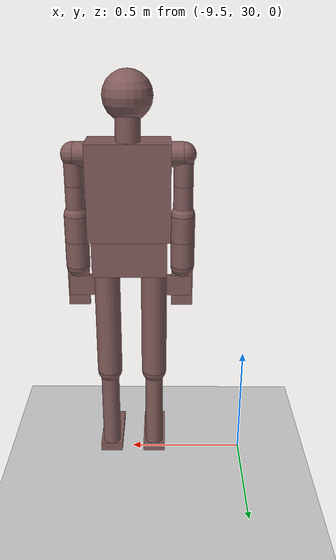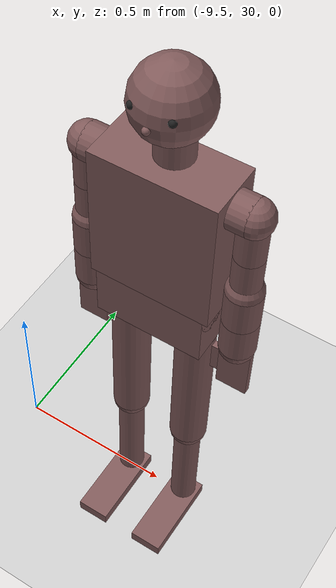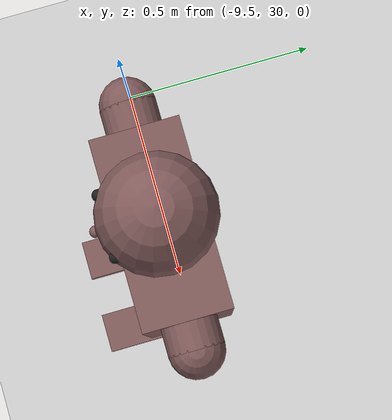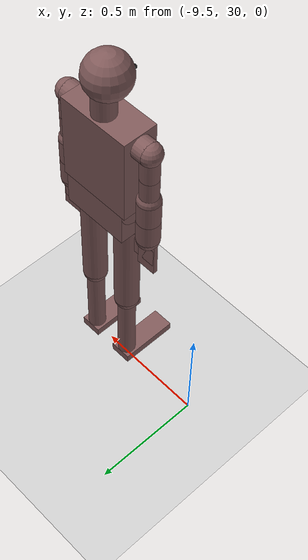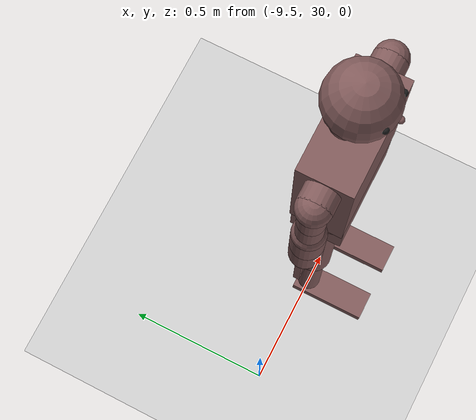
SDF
<sdf version="1.6">
 <world name="default">
  <model name="ground_plane">
   <static>1</static>
   <link name="link">
    <collision name="collision">
     <geometry><plane><normal>0 0 1</normal><size>100 100</size></plane></geometry>
     <surface><friction><ode><mu>100</mu><mu2>50</mu2></ode></friction></surface>
    </collision>
    <visual name="visual">
     <cast_shadows>0</cast_shadows>
     <geometry><plane><normal>0 0 1</normal><size>100 100</size></plane></geometry>
     <material>
      <script><uri>file://media/materials/scripts/gazebo.material</uri><name>Gazebo/Grey</name></script>
     </material>
    </visual>
   </link>
  </model>
  <model name="victim175_hot_moving_2">
   <static>1</static>
   <self_collide>1</self_collide>
   <link name="head">
    <pose>0 0 1.625 0 -0 0</pose>
    <visual name="visual">
     <geometry><sphere><radius>0.1</radius></sphere></geometry>
     <material>
      <emissive>0.5 0.35 0.35 1</emissive>
      <ambient>0.5 0.35 0.35 1</ambient>
      <diffuse>0.5 0.35 0.35 1</diffuse>
      <specular>0 0 0 0</specular>
     </material>
    </visual>
    <collision name="collision"><geometry><sphere><radius>0.1</radius></sphere></geometry></collision>
    <visual name="visual_nose">
     <pose>0 -0.1 -0.01 0 -0 0</pose>
     <geometry><sphere><radius>0.01</radius></sphere></geometry>
     <material>
      <emissive>0.5 0.35 0.35 1</emissive>
      <ambient>0.5 0.35 0.35 1</ambient>
      <diffuse>0.5 0.35 0.35 1</diffuse>
      <specular>0 0 0 0</specular>
     </material>
    </visual>
    <visual name="visual_rEye">
     <pose>-0.05 -0.08 0.02 0 -0 0</pose>
     <geometry><sphere><radius>0.01</radius></sphere></geometry>
     <material>
      <script><uri>file://media/materials/scripts/gazebo.material</uri><name>Gazebo/Black</name></script>
     </material>
    </visual>
    <visual name="visual_lEye">
     <pose>0.05 -0.08 0.02 0 -0 0</pose>
     <geometry><sphere><radius>0.01</radius></sphere></geometry>
     <material>
      <script><uri>file://media/materials/scripts/gazebo.material</uri><name>Gazebo/Black</name></script>
     </material>
    </visual>
    <self_collide>1</self_collide>
   </link>
   <link name="neck">
    <pose>0 0.02 1.49 0 -0 0</pose>
    <visual name="visual">
     <geometry><cylinder><radius>0.05</radius><length>0.15</length></cylinder></geometry>
     <material>
      <emissive>0.5 0.35 0.35 1</emissive>
      <ambient>0.5 0.35 0.35 1</ambient>
      <diffuse>0.5 0.35 0.35 1</diffuse>
      <specular>0 0 0 0</specular>
     </material>
    </visual>
    <collision name="collision">
     <geometry><cylinder><radius>0.05</radius><length>0.15</length></cylinder></geometry>
    </collision>
    <self_collide>1</self_collide>
   </link>
   <joint name="neck_head" type="revolute">
    <pose>0 0.02 -0.075 0 -0 0</pose>
    <child>head</child>
    <parent>neck</parent>
    <axis>
     <xyz>0 0 -1</xyz>
     <limit><lower>-1.7</lower><upper>1.7</upper></limit>
     <dynamics>
      <friction>0.01</friction>
      <spring_reference>0</spring_reference>
      <spring_stiffness>0</spring_stiffness>
     </dynamics>
     <use_parent_model_frame>0</use_parent_model_frame>
    </axis>
   </joint>
   <link name="body">
    <pose>0 0 1.255 0 -0 0</pose>
    <visual name="visual">
     <geometry><box><size>0.34 0.16 0.4</size></box></geometry>
     <material>
      <emissive>0.5 0.35 0.35 1</emissive>
      <ambient>0.5 0.35 0.35 1</ambient>
      <diffuse>0.5 0.35 0.35 1</diffuse>
      <specular>0 0 0 0</specular>
     </material>
    </visual>
    <collision name="collision"><geometry><box><size>0.34 0.16 0.4</size></box></geometry></collision>
    <self_collide>1</self_collide>
   </link>
   <joint name="body_neck" type="revolute">
    <pose>0 0.06 -0.075 0 -0 0</pose>
    <child>neck</child>
    <parent>body</parent>
    <axis>
     <xyz>1 0 0</xyz>
     <limit><lower>-0.2</lower><upper>1</upper></limit>
     <dynamics>
      <friction>0.01</friction>
      <spring_reference>0</spring_reference>
      <spring_stiffness>0</spring_stiffness>
     </dynamics>
     <use_parent_model_frame>0</use_parent_model_frame>
    </axis>
   </joint>
   <link name="waist">
    <pose>0 0 1.005 0 -0 0</pose>
    <visual name="visual">
     <pose>0 0 -0.025 0 -0 0</pose>
     <geometry><box><size>0.31 0.16 0.15</size></box></geometry>
     <material>
      <emissive>0.5 0.35 0.35 1</emissive>
      <ambient>0.5 0.35 0.35 1</ambient>
      <diffuse>0.5 0.35 0.35 1</diffuse>
      <specular>0 0 0 0</specular>
     </material>
    </visual>
    <collision name="collision"><geometry><box><size>0.31 0.16 0.1</size></box></geometry></collision>
    <visual name="visual2">
     <pose>0 0 0.05 3.14159 1.57079 3.14159</pose>
     <geometry><cylinder><radius>0.08</radius><length>0.31</length></cylinder></geometry>
     <material>
      <emissive>0.5 0.35 0.35 1</emissive>
      <ambient>0.5 0.35 0.35 1</ambient>
      <diffuse>0.5 0.35 0.35 1</diffuse>
      <specular>0 0 0 0</specular>
     </material>
    </visual>
    <collision name="collision2">
     <pose>0 0 0.05 3.14159 1.57079 3.14159</pose>
     <geometry><cylinder><radius>0.08</radius><length>0.31</length></cylinder></geometry>
    </collision>
    <self_collide>1</self_collide>
   </link>
   <joint name="body_waist" type="revolute">
    <pose>0 0 0.05 0 -0 0</pose>
    <child>waist</child>
    <parent>body</parent>
    <axis>
     <xyz>-1 0 0</xyz>
     <limit><lower>0</lower><upper>0</upper></limit>
     <dynamics>
      <friction>0.01</friction>
      <spring_reference>0</spring_reference>
      <spring_stiffness>0</spring_stiffness>
     </dynamics>
     <use_parent_model_frame>0</use_parent_model_frame>
    </axis>
   </joint>
   <link name="rHand">
    <pose>-0.22 0 0.84 0 -0 0</pose>
    <visual name="visual">
     <geometry><box><size>0.09 0.02 0.18</size></box></geometry>
     <material>
      <emissive>0.5 0.35 0.35 1</emissive>
      <ambient>0.5 0.35 0.35 1</ambient>
      <diffuse>0.5 0.35 0.35 1</diffuse>
      <specular>0 0 0 0</specular>
     </material>
    </visual>
    <collision name="collision"><geometry><box><size>0.09 0.02 0.18</size></box></geometry></collision>
    <visual name="visual2">
     <pose>0.02 0 0 0 -0 0</pose>
     <geometry><box><size>0.12 0.02 0.09</size></box></geometry>
     <material>
      <emissive>0.5 0.35 0.35 1</emissive>
      <ambient>0.5 0.35 0.35 1</ambient>
      <diffuse>0.5 0.35 0.35 1</diffuse>
      <specular>0 0 0 0</specular>
     </material>
    </visual>
    <collision name="collision2">
     <pose>0.02 0 0 0 -0 0</pose>
     <geometry><box><size>0.12 0.02 0.09</size></box></geometry>
    </collision>
    <self_collide>1</self_collide>
   </link>
   <link name="lHand">
    <pose>0.22 0 0.84 0 -0 0</pose>
    <visual name="visual">
     <geometry><box><size>0.09 0.02 0.18</size></box></geometry>
     <material>
      <emissive>0.5 0.35 0.35 1</emissive>
      <ambient>0.5 0.35 0.35 1</ambient>
      <diffuse>0.5 0.35 0.35 1</diffuse>
      <specular>0 0 0 0</specular>
     </material>
    </visual>
    <collision name="collision"><geometry><box><size>0.09 0.02 0.18</size></box></geometry></collision>
    <visual name="visual2">
     <pose>-0.02 0 0 0 -0 0</pose>
     <geometry><box><size>0.12 0.02 0.09</size></box></geometry>
     <material>
      <emissive>0.5 0.35 0.35 1</emissive>
      <ambient>0.5 0.35 0.35 1</ambient>
      <diffuse>0.5 0.35 0.35 1</diffuse>
      <specular>0 0 0 0</specular>
     </material>
    </visual>
    <collision name="collision2">
     <pose>-0.02 0 0 0 -0 0</pose>
     <geometry><box><size>0.12 0.02 0.09</size></box></geometry>
    </collision>
    <self_collide>1</self_collide>
   </link>
   <link name="rFoot">
    <pose>-0.1 -0.095 0.02 0 -0 0</pose>
    <visual name="visual">
     <geometry><box><size>0.1 0.27 0.04</size></box></geometry>
     <material>
      <emissive>0.5 0.35 0.35 1</emissive>
      <ambient>0.5 0.35 0.35 1</ambient>
      <diffuse>0.5 0.35 0.35 1</diffuse>
      <specular>0 0 0 0</specular>
     </material>
    </visual>
    <collision name="collision"><geometry><box><size>0.1 0.27 0.04</size></box></geometry></collision>
    <self_collide>1</self_collide>
   </link>
   <link name="lFoot">
    <pose>0.1 -0.095 0.02 0 -0 0</pose>
    <visual name="visual">
     <geometry><box><size>0.1 0.27 0.04</size></box></geometry>
     <material>
      <emissive>0.5 0.35 0.35 1</emissive>
      <ambient>0.5 0.35 0.35 1</ambient>
      <diffuse>0.5 0.35 0.35 1</diffuse>
      <specular>0 0 0 0</specular>
     </material>
    </visual>
    <collision name="collision"><geometry><box><size>0.1 0.27 0.04</size></box></geometry></collision>
    <self_collide>1</self_collide>
   </link>
   <link name="rLeg2">
    <pose>-0.1 0 0.23 0 -0 0</pose>
    <visual name="visual">
     <geometry><cylinder><radius>0.04</radius><length>0.38</length></cylinder></geometry>
     <material>
      <emissive>0.5 0.35 0.35 1</emissive>
      <ambient>0.5 0.35 0.35 1</ambient>
      <diffuse>0.5 0.35 0.35 1</diffuse>
      <specular>0 0 0 0</specular>
     </material>
    </visual>
    <collision name="collision">
     <geometry><cylinder><radius>0.04</radius><length>0.38</length></cylinder></geometry>
    </collision>
    <visual name="visual2">
     <pose>0 0 -0.19 0 -0 0</pose>
     <geometry><sphere><radius>0.04</radius></sphere></geometry>
     <material>
      <emissive>0.5 0.35 0.35 1</emissive>
      <ambient>0.5 0.35 0.35 1</ambient>
      <diffuse>0.5 0.35 0.35 1</diffuse>
      <specular>0 0 0 0</specular>
     </material>
    </visual>
    <collision name="collision2">
     <pose>0 0 -0.19 0 -0 0</pose>
     <geometry><sphere><radius>0.04</radius></sphere></geometry>
    </collision>
    <self_collide>1</self_collide>
   </link>
   <link name="lLeg2">
    <pose>0.1 0 0.23 0 -0 0</pose>
    <visual name="visual">
     <geometry><cylinder><radius>0.04</radius><length>0.38</length></cylinder></geometry>
     <material>
      <emissive>0.5 0.35 0.35 1</emissive>
      <ambient>0.5 0.35 0.35 1</ambient>
      <diffuse>0.5 0.35 0.35 1</diffuse>
      <specular>0 0 0 0</specular>
     </material>
    </visual>
    <collision name="collision">
     <geometry><cylinder><radius>0.04</radius><length>0.38</length></cylinder></geometry>
    </collision>
    <visual name="visual2">
     <pose>0 0 -0.19 0 -0 0</pose>
     <geometry><sphere><radius>0.04</radius></sphere></geometry>
     <material>
      <emissive>0.5 0.35 0.35 1</emissive>
      <ambient>0.5 0.35 0.35 1</ambient>
      <diffuse>0.5 0.35 0.35 1</diffuse>
      <specular>0 0 0 0</specular>
     </material>
    </visual>
    <collision name="collision2">
     <pose>0 0 -0.19 0 -0 0</pose>
     <geometry><sphere><radius>0.04</radius></sphere></geometry>
    </collision>
    <self_collide>1</self_collide>
   </link>
   <joint name="rLeg2_rFoot" type="revolute">
    <pose>0 0.095 0.02 0 -0 0</pose>
    <child>rFoot</child>
    <parent>rLeg2</parent>
    <axis>
     <xyz>1 0 0</xyz>
     <limit><lower>0</lower><upper>0</upper></limit>
     <dynamics>
      <friction>0.01</friction>
      <spring_reference>0</spring_reference>
      <spring_stiffness>0</spring_stiffness>
     </dynamics>
     <use_parent_model_frame>0</use_parent_model_frame>
    </axis>
   </joint>
   <joint name="lLeg2_lFoot" type="revolute">
    <pose>0 0.095 0.02 0 -0 0</pose>
    <child>lFoot</child>
    <parent>lLeg2</parent>
    <axis>
     <xyz>1 0 0</xyz>
     <limit><lower>0</lower><upper>0</upper></limit>
     <dynamics>
      <friction>0.01</friction>
      <spring_reference>0</spring_reference>
      <spring_stiffness>0</spring_stiffness>
     </dynamics>
     <use_parent_model_frame>0</use_parent_model_frame>
    </axis>
   </joint>
   <link name="rLeg1">
    <pose>-0.1 0 0.66 0 -0 0</pose>
    <visual name="visual">
     <geometry><cylinder><radius>0.055</radius><length>0.48</length></cylinder></geometry>
     <material>
      <emissive>0.5 0.35 0.35 1</emissive>
      <ambient>0.5 0.35 0.35 1</ambient>
      <diffuse>0.5 0.35 0.35 1</diffuse>
      <specular>0 0 0 0</specular>
     </material>
    </visual>
    <collision name="collision">
     <geometry><cylinder><radius>0.055</radius><length>0.48</length></cylinder></geometry>
    </collision>
    <visual name="visual2">
     <pose>0 0 -0.24 0 -0 0</pose>
     <geometry><sphere><radius>0.055</radius></sphere></geometry>
     <material>
      <emissive>0.5 0.35 0.35 1</emissive>
      <ambient>0.5 0.35 0.35 1</ambient>
      <diffuse>0.5 0.35 0.35 1</diffuse>
      <specular>0 0 0 0</specular>
     </material>
    </visual>
    <collision name="collision2">
     <pose>0 0 -0.24 0 -0 0</pose>
     <geometry><sphere><radius>0.055</radius></sphere></geometry>
    </collision>
    <visual name="visual3">
     <pose>0 0 0.24 0 -0 0</pose>
     <geometry><sphere><radius>0.055</radius></sphere></geometry>
     <material>
      <emissive>0.5 0.35 0.35 1</emissive>
      <ambient>0.5 0.35 0.35 1</ambient>
      <diffuse>0.5 0.35 0.35 1</diffuse>
      <specular>0 0 0 0</specular>
     </material>
    </visual>
    <collision name="collision3">
     <pose>0 0 0.24 0 -0 0</pose>
     <geometry><sphere><radius>0.055</radius></sphere></geometry>
    </collision>
    <self_collide>1</self_collide>
   </link>
   <link name="lLeg1">
    <pose>0.1 0 0.66 0 -0 0</pose>
    <visual name="visual">
     <geometry><cylinder><radius>0.055</radius><length>0.48</length></cylinder></geometry>
     <material>
      <emissive>0.5 0.35 0.35 1</emissive>
      <ambient>0.5 0.35 0.35 1</ambient>
      <diffuse>0.5 0.35 0.35 1</diffuse>
      <specular>0 0 0 0</specular>
     </material>
    </visual>
    <collision name="collision">
     <geometry><cylinder><radius>0.055</radius><length>0.48</length></cylinder></geometry>
    </collision>
    <visual name="visual2">
     <pose>0 0 -0.24 0 -0 0</pose>
     <geometry><sphere><radius>0.055</radius></sphere></geometry>
     <material>
      <emissive>0.5 0.35 0.35 1</emissive>
      <ambient>0.5 0.35 0.35 1</ambient>
      <diffuse>0.5 0.35 0.35 1</diffuse>
      <specular>0 0 0 0</specular>
     </material>
    </visual>
    <collision name="collision2">
     <pose>0 0 -0.24 0 -0 0</pose>
     <geometry><sphere><radius>0.055</radius></sphere></geometry>
    </collision>
    <visual name="visual3">
     <pose>0 0 0.24 0 -0 0</pose>
     <geometry><sphere><radius>0.055</radius></sphere></geometry>
     <material>
      <emissive>0.5 0.35 0.35 1</emissive>
      <ambient>0.5 0.35 0.35 1</ambient>
      <diffuse>0.5 0.35 0.35 1</diffuse>
      <specular>0 0 0 0</specular>
     </material>
    </visual>
    <collision name="collision3">
     <pose>0 0 0.24 0 -0 0</pose>
     <geometry><sphere><radius>0.055</radius></sphere></geometry>
    </collision>
    <self_collide>1</self_collide>
   </link>
   <joint name="rLeg1_rLeg2" type="revolute">
    <pose>0 0 0.19 0 -0 0</pose>
    <child>rLeg2</child>
    <parent>rLeg1</parent>
    <axis>
     <xyz>1 0 0</xyz>
     <limit><lower>0</lower><upper>0</upper></limit>
     <dynamics>
      <friction>0.01</friction>
      <spring_reference>0</spring_reference>
      <spring_stiffness>0</spring_stiffness>
     </dynamics>
     <use_parent_model_frame>0</use_parent_model_frame>
    </axis>
   </joint>
   <joint name="lLeg1_lLeg2" type="revolute">
    <pose>0 0 0.19 0 -0 0</pose>
    <child>lLeg2</child>
    <parent>lLeg1</parent>
    <axis>
     <xyz>1 0 0</xyz>
     <limit><lower>0</lower><upper>0</upper></limit>
     <dynamics>
      <friction>0.01</friction>
      <spring_reference>0</spring_reference>
      <spring_stiffness>0</spring_stiffness>
     </dynamics>
     <use_parent_model_frame>0</use_parent_model_frame>
    </axis>
   </joint>
   <link name="rButt">
    <pose>-0.1 0 0.9275 0 -0 0</pose>
    <visual name="visual">
     <geometry><cylinder><radius>0.055</radius><length>0.055</length></cylinder></geometry>
     <material>
      <emissive>0.5 0.35 0.35 1</emissive>
      <ambient>0.5 0.35 0.35 1</ambient>
      <diffuse>0.5 0.35 0.35 1</diffuse>
      <specular>0 0 0 0</specular>
     </material>
    </visual>
    <collision name="collision">
     <geometry><cylinder><radius>0.055</radius><length>0.055</length></cylinder></geometry>
    </collision>
    <self_collide>1</self_collide>
   </link>
   <link name="lButt">
    <pose>0.1 0 0.9275 0 -0 0</pose>
    <visual name="visual">
     <geometry><cylinder><radius>0.055</radius><length>0.055</length></cylinder></geometry>
     <material>
      <emissive>0.5 0.35 0.35 1</emissive>
      <ambient>0.5 0.35 0.35 1</ambient>
      <diffuse>0.5 0.35 0.35 1</diffuse>
      <specular>0 0 0 0</specular>
     </material>
    </visual>
    <collision name="collision">
     <geometry><cylinder><radius>0.055</radius><length>0.055</length></cylinder></geometry>
    </collision>
    <self_collide>1</self_collide>
   </link>
   <joint name="rButt_rLeg1" type="revolute">
    <pose>0 0 0.24 0 -0 0</pose>
    <child>rLeg1</child>
    <parent>rButt</parent>
    <axis>
     <xyz>1 0 0</xyz>
     <limit><lower>0</lower><upper>0</upper></limit>
     <dynamics>
      <friction>0.01</friction>
      <spring_reference>0</spring_reference>
      <spring_stiffness>0</spring_stiffness>
     </dynamics>
     <use_parent_model_frame>0</use_parent_model_frame>
    </axis>
   </joint>
   <joint name="lButt_lLeg1" type="revolute">
    <pose>0 0 0.24 0 -0 0</pose>
    <child>lLeg1</child>
    <parent>lButt</parent>
    <axis>
     <xyz>1 0 0</xyz>
     <limit><lower>0</lower><upper>0</upper></limit>
     <dynamics>
      <friction>0.01</friction>
      <spring_reference>0</spring_reference>
      <spring_stiffness>0</spring_stiffness>
     </dynamics>
     <use_parent_model_frame>0</use_parent_model_frame>
    </axis>
   </joint>
   <joint name="waist_rButt" type="revolute">
    <child>rButt</child>
    <parent>waist</parent>
    <axis>
     <xyz>0 0 -1</xyz>
     <limit><lower>-1</lower><upper>1</upper></limit>
     <dynamics>
      <friction>0.01</friction>
      <spring_reference>0</spring_reference>
      <spring_stiffness>0</spring_stiffness>
     </dynamics>
     <use_parent_model_frame>0</use_parent_model_frame>
    </axis>
   </joint>
   <joint name="waist_lButt" type="revolute">
    <child>lButt</child>
    <parent>waist</parent>
    <axis>
     <xyz>0 0 1</xyz>
     <limit><lower>-1</lower><upper>1</upper></limit>
     <dynamics>
      <friction>0.01</friction>
      <spring_reference>0</spring_reference>
      <spring_stiffness>0</spring_stiffness>
     </dynamics>
     <use_parent_model_frame>0</use_parent_model_frame>
    </axis>
   </joint>
   <link name="rShoulder">
    <pose>-0.195 0 1.4 0 -0 0</pose>
    <visual name="visual">
     <pose>0 0 0 3.14159 1.57079 3.14159</pose>
     <geometry><cylinder><radius>0.05</radius><length>0.05</length></cylinder></geometry>
     <material>
      <emissive>0.5 0.35 0.35 1</emissive>
      <ambient>0.5 0.35 0.35 1</ambient>
      <diffuse>0.5 0.35 0.35 1</diffuse>
      <specular>0 0 0 0</specular>
     </material>
    </visual>
    <collision name="collision">
     <pose>0 0 0 3.14159 1.57079 3.14159</pose>
     <geometry><cylinder><radius>0.05</radius><length>0.05</length></cylinder></geometry>
    </collision>
    <self_collide>1</self_collide>
   </link>
   <link name="lShoulder">
    <pose>0.195 0 1.4 0 -0 0</pose>
    <visual name="visual">
     <pose>0 0 0 3.14159 1.57079 3.14159</pose>
     <geometry><cylinder><radius>0.05</radius><length>0.05</length></cylinder></geometry>
     <material>
      <emissive>0.5 0.35 0.35 1</emissive>
      <ambient>0.5 0.35 0.35 1</ambient>
      <diffuse>0.5 0.35 0.35 1</diffuse>
      <specular>0 0 0 0</specular>
     </material>
    </visual>
    <collision name="collision">
     <pose>0 0 0 3.14159 1.57079 3.14159</pose>
     <geometry><cylinder><radius>0.05</radius><length>0.05</length></cylinder></geometry>
    </collision>
    <self_collide>1</self_collide>
   </link>
   <joint name="body_rShoulder" type="revolute">
    <child>rShoulder</child>
    <parent>body</parent>
    <axis>
     <xyz>-1 0 0</xyz>
     <limit><lower>-1.5708</lower><upper>3.2</upper></limit>
     <dynamics>
      <friction>0.01</friction>
      <spring_reference>0</spring_reference>
      <spring_stiffness>0</spring_stiffness>
     </dynamics>
     <use_parent_model_frame>0</use_parent_model_frame>
    </axis>
   </joint>
   <joint name="body_lShoulder" type="revolute">
    <child>lShoulder</child>
    <parent>body</parent>
    <axis>
     <xyz>1 0 0</xyz>
     <limit><lower>-1.5708</lower><upper>3.2</upper></limit>
     <dynamics>
      <friction>0.01</friction>
      <spring_reference>0</spring_reference>
      <spring_stiffness>0</spring_stiffness>
     </dynamics>
     <use_parent_model_frame>0</use_parent_model_frame>
    </axis>
   </joint>
   <link name="rArm1U">
    <pose>-0.22 0 1.3375 0 -0 0</pose>
    <visual name="visual">
     <geometry><cylinder><radius>0.04</radius><length>0.125</length></cylinder></geometry>
     <material>
      <emissive>0.5 0.35 0.35 1</emissive>
      <ambient>0.5 0.35 0.35 1</ambient>
      <diffuse>0.5 0.35 0.35 1</diffuse>
      <specular>0 0 0 0</specular>
     </material>
    </visual>
    <collision name="collision">
     <geometry><cylinder><radius>0.04</radius><length>0.125</length></cylinder></geometry>
    </collision>
    <visual name="visual2">
     <pose>0 0 0.0625 0 -0 0</pose>
     <geometry><sphere><radius>0.05</radius></sphere></geometry>
     <material>
      <emissive>0.5 0.35 0.35 1</emissive>
      <ambient>0.5 0.35 0.35 1</ambient>
      <diffuse>0.5 0.35 0.35 1</diffuse>
      <specular>0 0 0 0</specular>
     </material>
    </visual>
    <collision name="collision2">
     <pose>0 0 0.0625 0 -0 0</pose>
     <geometry><sphere><radius>0.05</radius></sphere></geometry>
    </collision>
    <self_collide>1</self_collide>
   </link>
   <link name="rArm1L">
    <pose>-0.22 0 1.2125 0 -0 0</pose>
    <visual name="visual">
     <geometry><cylinder><radius>0.04</radius><length>0.125</length></cylinder></geometry>
     <material>
      <emissive>0.5 0.35 0.35 1</emissive>
      <ambient>0.5 0.35 0.35 1</ambient>
      <diffuse>0.5 0.35 0.35 1</diffuse>
      <specular>0 0 0 0</specular>
     </material>
    </visual>
    <collision name="collision">
     <geometry><cylinder><radius>0.04</radius><length>0.125</length></cylinder></geometry>
    </collision>
    <visual name="visual2">
     <pose>0 0 -0.0625 0 -0 0</pose>
     <geometry><sphere><radius>0.05</radius></sphere></geometry>
     <material>
      <emissive>0.5 0.35 0.35 1</emissive>
      <ambient>0.5 0.35 0.35 1</ambient>
      <diffuse>0.5 0.35 0.35 1</diffuse>
      <specular>0 0 0 0</specular>
     </material>
    </visual>
    <collision name="collision2">
     <pose>0 0 -0.0625 0 -0 0</pose>
     <geometry><sphere><radius>0.05</radius></sphere></geometry>
    </collision>
    <self_collide>1</self_collide>
   </link>
   <joint name="rArm1U_rArm1L" type="revolute">
    <pose>0 0 0.0625 0 -0 0</pose>
    <child>rArm1L</child>
    <parent>rArm1U</parent>
    <axis>
     <xyz>0 0 -1</xyz>
     <limit><lower>-1.5708</lower><upper>1.5708</upper></limit>
     <dynamics>
      <friction>0.01</friction>
      <spring_reference>0</spring_reference>
      <spring_stiffness>0</spring_stiffness>
     </dynamics>
     <use_parent_model_frame>0</use_parent_model_frame>
    </axis>
   </joint>
   <link name="lArm1U">
    <pose>0.22 0 1.3375 0 -0 0</pose>
    <visual name="visual">
     <geometry><cylinder><radius>0.04</radius><length>0.125</length></cylinder></geometry>
     <material>
      <emissive>0.5 0.35 0.35 1</emissive>
      <ambient>0.5 0.35 0.35 1</ambient>
      <diffuse>0.5 0.35 0.35 1</diffuse>
      <specular>0 0 0 0</specular>
     </material>
    </visual>
    <collision name="collision">
     <geometry><cylinder><radius>0.04</radius><length>0.125</length></cylinder></geometry>
    </collision>
    <visual name="visual2">
     <pose>0 0 0.0625 0 -0 0</pose>
     <geometry><sphere><radius>0.05</radius></sphere></geometry>
     <material>
      <emissive>0.5 0.35 0.35 1</emissive>
      <ambient>0.5 0.35 0.35 1</ambient>
      <diffuse>0.5 0.35 0.35 1</diffuse>
      <specular>0 0 0 0</specular>
     </material>
    </visual>
    <collision name="collision2">
     <pose>0 0 0.0625 0 -0 0</pose>
     <geometry><sphere><radius>0.05</radius></sphere></geometry>
    </collision>
    <self_collide>1</self_collide>
   </link>
   <link name="lArm1L">
    <pose>0.22 0 1.2125 0 -0 0</pose>
    <visual name="visual">
     <geometry><cylinder><radius>0.04</radius><length>0.125</length></cylinder></geometry>
     <material>
      <emissive>0.5 0.35 0.35 1</emissive>
      <ambient>0.5 0.35 0.35 1</ambient>
      <diffuse>0.5 0.35 0.35 1</diffuse>
      <specular>0 0 0 0</specular>
     </material>
    </visual>
    <collision name="collision">
     <geometry><cylinder><radius>0.04</radius><length>0.125</length></cylinder></geometry>
    </collision>
    <visual name="visual2">
     <pose>0 0 -0.0625 0 -0 0</pose>
     <geometry><sphere><radius>0.05</radius></sphere></geometry>
     <material>
      <emissive>0.5 0.35 0.35 1</emissive>
      <ambient>0.5 0.35 0.35 1</ambient>
      <diffuse>0.5 0.35 0.35 1</diffuse>
      <specular>0 0 0 0</specular>
     </material>
    </visual>
    <collision name="collision2">
     <pose>0 0 -0.0625 0 -0 0</pose>
     <geometry><sphere><radius>0.05</radius></sphere></geometry>
    </collision>
    <self_collide>1</self_collide>
   </link>
   <joint name="lArm1U_lArm1L" type="revolute">
    <pose>0 0 0.0625 0 -0 0</pose>
    <child>lArm1L</child>
    <parent>lArm1U</parent>
    <axis>
     <xyz>0 0 1</xyz>
     <limit><lower>-1.5708</lower><upper>1.5708</upper></limit>
     <dynamics>
      <friction>0.01</friction>
      <spring_reference>0</spring_reference>
      <spring_stiffness>0</spring_stiffness>
     </dynamics>
     <use_parent_model_frame>0</use_parent_model_frame>
    </axis>
   </joint>
   <joint name="rShoulder_rArm1" type="revolute">
    <pose>0 0 0.0625 0 -0 0</pose>
    <child>rArm1U</child>
    <parent>rShoulder</parent>
    <axis>
     <xyz>0 -1 0</xyz>
     <limit><lower>-1.5708</lower><upper>3.2</upper></limit>
     <dynamics>
      <friction>0.01</friction>
      <spring_reference>0</spring_reference>
      <spring_stiffness>0</spring_stiffness>
     </dynamics>
     <use_parent_model_frame>0</use_parent_model_frame>
    </axis>
   </joint>
   <joint name="lShoulder_lArm1" type="revolute">
    <pose>0 0 0.0625 0 -0 0</pose>
    <child>lArm1U</child>
    <parent>lShoulder</parent>
    <axis>
     <xyz>0 1 0</xyz>
     <limit><lower>-1.5708</lower><upper>3.2</upper></limit>
     <dynamics>
      <friction>0.01</friction>
      <spring_reference>0</spring_reference>
      <spring_stiffness>0</spring_stiffness>
     </dynamics>
     <use_parent_model_frame>0</use_parent_model_frame>
    </axis>
   </joint>
   <link name="rArm2U">
    <pose>-0.22 0 1.095 0 -0 0</pose>
    <visual name="visual">
     <geometry><cylinder><radius>0.05</radius><length>0.11</length></cylinder></geometry>
     <material>
      <emissive>0.5 0.35 0.35 1</emissive>
      <ambient>0.5 0.35 0.35 1</ambient>
      <diffuse>0.5 0.35 0.35 1</diffuse>
      <specular>0 0 0 0</specular>
     </material>
    </visual>
    <collision name="collision">
     <geometry><cylinder><radius>0.05</radius><length>0.11</length></cylinder></geometry>
    </collision>
    <self_collide>1</self_collide>
   </link>
   <link name="rArm2L">
    <pose>-0.22 0 0.985 0 -0 0</pose>
    <visual name="visual">
     <geometry><cylinder><radius>0.05</radius><length>0.11</length></cylinder></geometry>
     <material>
      <emissive>0.5 0.35 0.35 1</emissive>
      <ambient>0.5 0.35 0.35 1</ambient>
      <diffuse>0.5 0.35 0.35 1</diffuse>
      <specular>0 0 0 0</specular>
     </material>
    </visual>
    <collision name="collision">
     <geometry><cylinder><radius>0.05</radius><length>0.11</length></cylinder></geometry>
    </collision>
    <visual name="visual2">
     <pose>0 0 -0.055 0 -0 0</pose>
     <geometry><sphere><radius>0.05</radius></sphere></geometry>
     <material>
      <emissive>0.5 0.35 0.35 1</emissive>
      <ambient>0.5 0.35 0.35 1</ambient>
      <diffuse>0.5 0.35 0.35 1</diffuse>
      <specular>0 0 0 0</specular>
     </material>
    </visual>
    <collision name="collision2">
     <pose>0 0 -0.055 0 -0 0</pose>
     <geometry><sphere><radius>0.05</radius></sphere></geometry>
    </collision>
    <self_collide>1</self_collide>
   </link>
   <joint name="rArm2U_rArm2L" type="revolute">
    <pose>0 0 0.055 0 -0 0</pose>
    <child>rArm2L</child>
    <parent>rArm2U</parent>
    <axis>
     <xyz>0 0 -1</xyz>
     <limit><lower>-1.5708</lower><upper>1.5708</upper></limit>
     <dynamics>
      <friction>0.01</friction>
      <spring_reference>0</spring_reference>
      <spring_stiffness>0</spring_stiffness>
     </dynamics>
     <use_parent_model_frame>0</use_parent_model_frame>
    </axis>
   </joint>
   <link name="lArm2U">
    <pose>0.22 0 1.095 0 -0 0</pose>
    <visual name="visual">
     <geometry><cylinder><radius>0.05</radius><length>0.11</length></cylinder></geometry>
     <material>
      <emissive>0.5 0.35 0.35 1</emissive>
      <ambient>0.5 0.35 0.35 1</ambient>
      <diffuse>0.5 0.35 0.35 1</diffuse>
      <specular>0 0 0 0</specular>
     </material>
    </visual>
    <collision name="collision">
     <geometry><cylinder><radius>0.05</radius><length>0.11</length></cylinder></geometry>
    </collision>
    <self_collide>1</self_collide>
   </link>
   <link name="lArm2L">
    <pose>0.22 0 0.985 0 -0 0</pose>
    <visual name="visual">
     <geometry><cylinder><radius>0.05</radius><length>0.11</length></cylinder></geometry>
     <material>
      <emissive>0.5 0.35 0.35 1</emissive>
      <ambient>0.5 0.35 0.35 1</ambient>
      <diffuse>0.5 0.35 0.35 1</diffuse>
      <specular>0 0 0 0</specular>
     </material>
    </visual>
    <collision name="collision">
     <geometry><cylinder><radius>0.05</radius><length>0.11</length></cylinder></geometry>
    </collision>
    <visual name="visual2">
     <pose>0 0 -0.055 0 -0 0</pose>
     <geometry><sphere><radius>0.05</radius></sphere></geometry>
     <material>
      <emissive>0.5 0.35 0.35 1</emissive>
      <ambient>0.5 0.35 0.35 1</ambient>
      <diffuse>0.5 0.35 0.35 1</diffuse>
      <specular>0 0 0 0</specular>
     </material>
    </visual>
    <collision name="collision2">
     <pose>0 0 -0.055 0 -0 0</pose>
     <geometry><sphere><radius>0.05</radius></sphere></geometry>
    </collision>
    <self_collide>1</self_collide>
   </link>
   <joint name="lArm2U_lArm2L" type="revolute">
    <pose>0 0 0.055 0 -0 0</pose>
    <child>lArm2L</child>
    <parent>lArm2U</parent>
    <axis>
     <xyz>0 0 1</xyz>
     <limit><lower>-1.5708</lower><upper>1.5708</upper></limit>
     <dynamics>
      <friction>0.01</friction>
      <spring_reference>0</spring_reference>
      <spring_stiffness>0</spring_stiffness>
     </dynamics>
     <use_parent_model_frame>0</use_parent_model_frame>
    </axis>
   </joint>
   <joint name="rArm1_rArm2" type="revolute">
    <pose>0 0 0.055 0 -0 0</pose>
    <child>rArm2U</child>
    <parent>rArm1L</parent>
    <axis>
     <xyz>-1 0 0</xyz>
     <limit><lower>0</lower><upper>2.8</upper></limit>
     <dynamics>
      <friction>0.01</friction>
      <spring_reference>0</spring_reference>
      <spring_stiffness>0</spring_stiffness>
     </dynamics>
     <use_parent_model_frame>0</use_parent_model_frame>
    </axis>
   </joint>
   <joint name="lArm1_lArm2" type="revolute">
    <pose>0 0 0.055 0 -0 0</pose>
    <child>lArm2U</child>
    <parent>lArm1L</parent>
    <axis>
     <xyz>-1 0 0</xyz>
     <limit><lower>0</lower><upper>2.8</upper></limit>
     <dynamics>
      <friction>0.01</friction>
      <spring_reference>0</spring_reference>
      <spring_stiffness>0</spring_stiffness>
     </dynamics>
     <use_parent_model_frame>0</use_parent_model_frame>
    </axis>
   </joint>
   <joint name="rArm2_rHand" type="revolute">
    <pose>0 0 0.09 0 -0 0</pose>
    <child>rHand</child>
    <parent>rArm2L</parent>
    <axis>
     <xyz>-1 0 0</xyz>
     <limit><lower>-1.57</lower><upper>1.4</upper></limit>
     <dynamics>
      <friction>0.01</friction>
      <spring_reference>0</spring_reference>
      <spring_stiffness>0</spring_stiffness>
     </dynamics>
     <use_parent_model_frame>0</use_parent_model_frame>
    </axis>
   </joint>
   <joint name="lArm2_lHand" type="revolute">
    <pose>0 0 0.09 0 -0 0</pose>
    <child>lHand</child>
    <parent>lArm2L</parent>
    <axis>
     <xyz>-1 0 0</xyz>
     <limit><lower>-1.57</lower><upper>1.4</upper></limit>
     <dynamics>
      <friction>0.01</friction>
      <spring_reference>0</spring_reference>
      <spring_stiffness>0</spring_stiffness>
     </dynamics>
     <use_parent_model_frame>0</use_parent_model_frame>
    </axis>
   </joint>
   <joint name="world_rFoot" type="revolute">
    <child>rFoot</child>
    <parent>world</parent>
    <axis>
     <xyz>0 0 1</xyz>
     <limit><lower>0</lower><upper>0</upper></limit>
     <use_parent_model_frame>0</use_parent_model_frame>
     <dynamics><spring_reference>0</spring_reference><spring_stiffness>0</spring_stiffness></dynamics>
    </axis>
   </joint>
   <joint name="world_lFoot" type="revolute">
    <child>lFoot</child>
    <parent>world</parent>
    <axis>
     <xyz>0 0 1</xyz>
     <limit><lower>0</lower><upper>0</upper></limit>
     <use_parent_model_frame>0</use_parent_model_frame>
     <dynamics><spring_reference>0</spring_reference><spring_stiffness>0</spring_stiffness></dynamics>
    </axis>
   </joint>
   <pose>-9 30 0 0 -0 0</pose>
  </model>
 </world>
</sdf>
